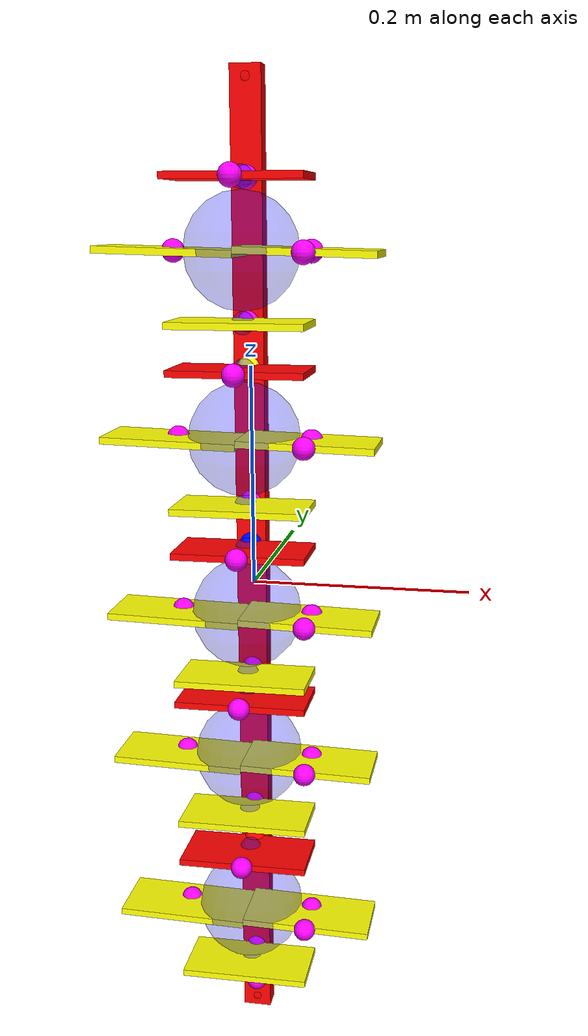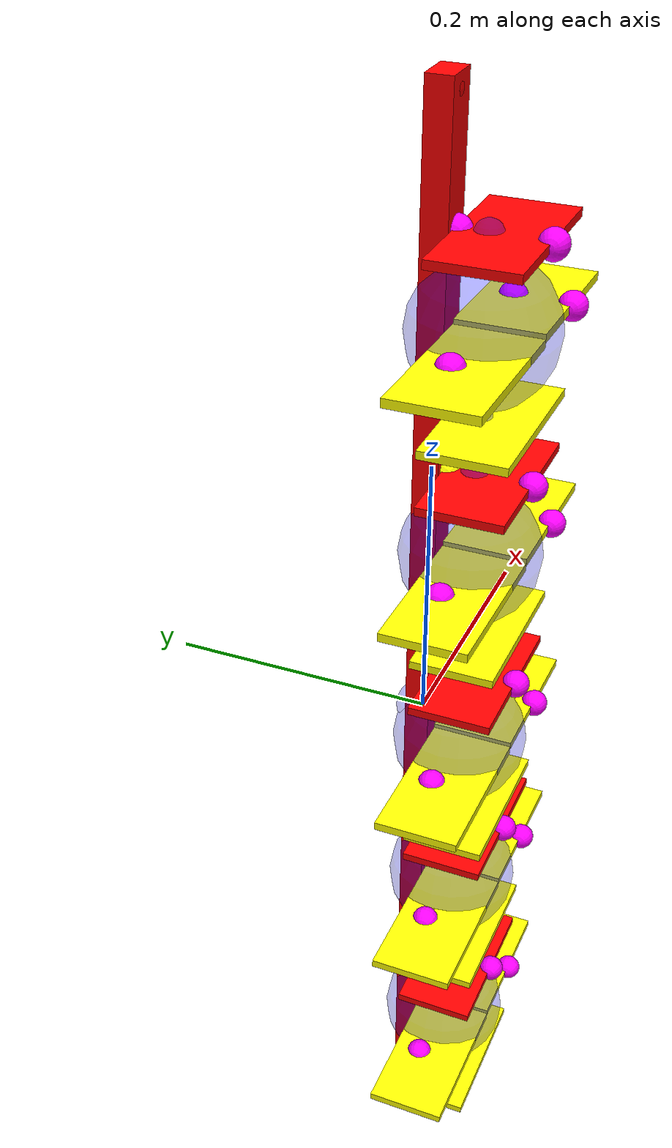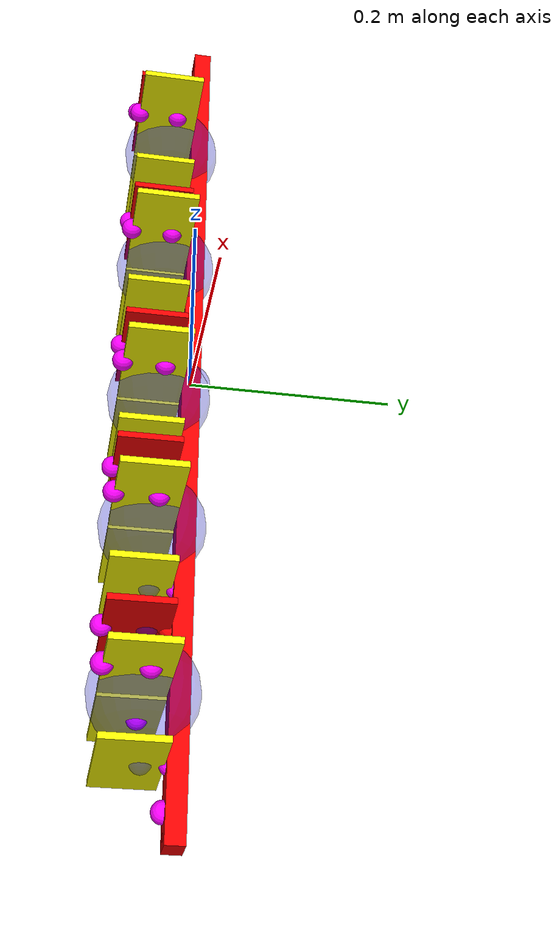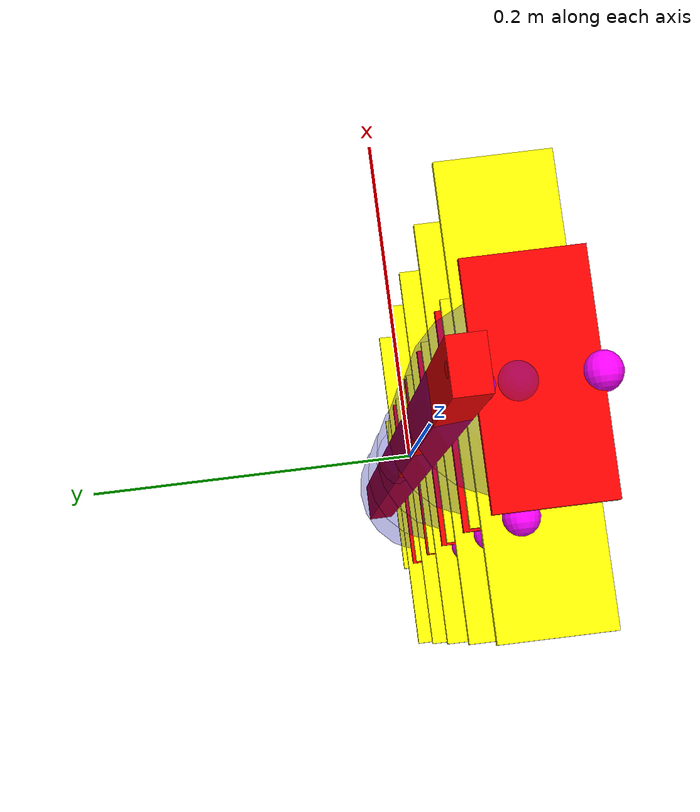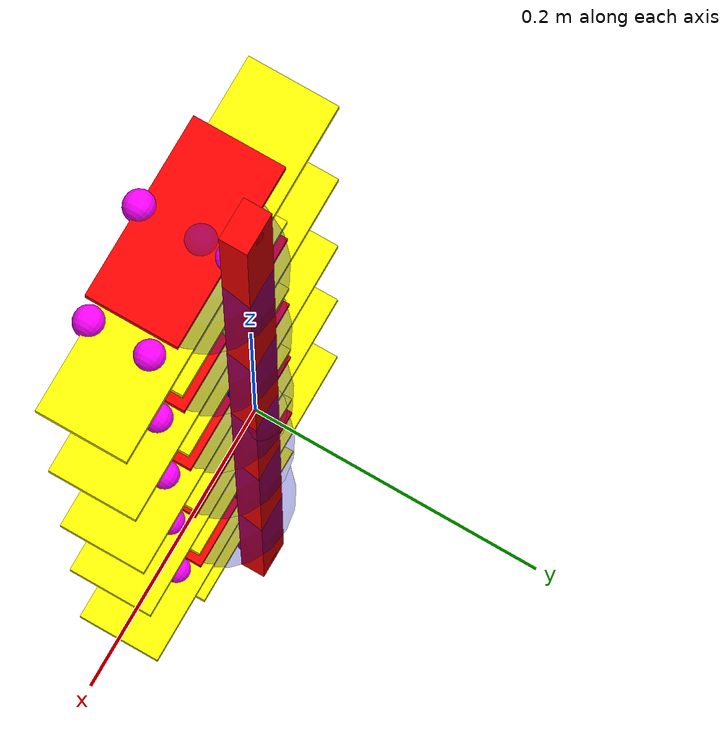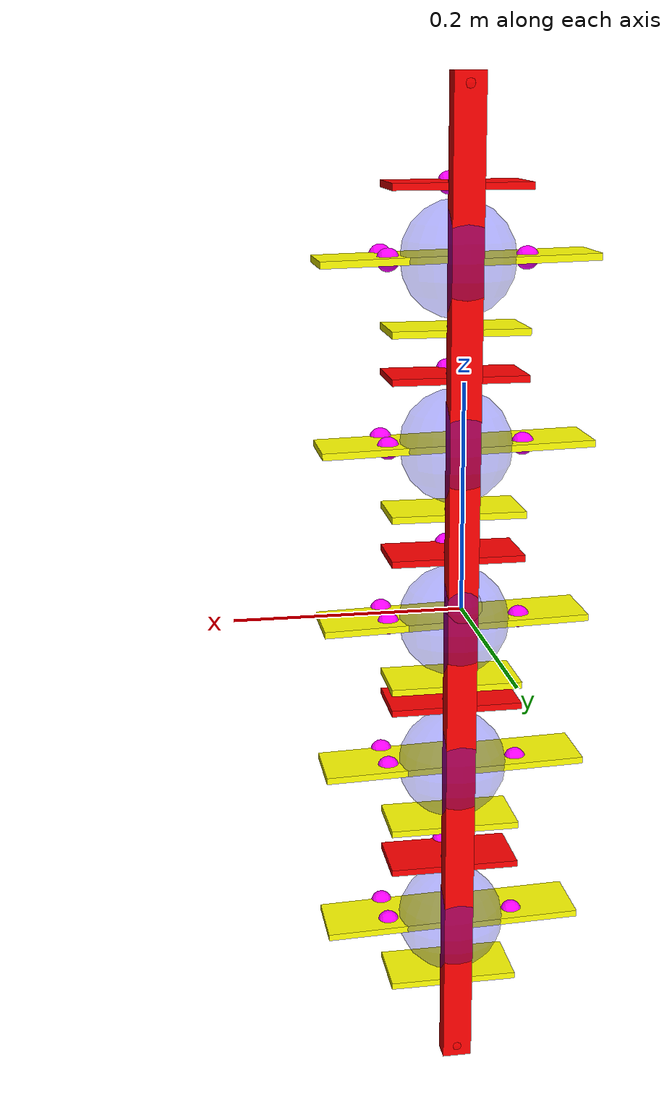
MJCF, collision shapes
<mujoco model="shelf_ivar_0678">
    <asset>
        <mesh file="shelf_ivar_0678/box.stl" name="box_mesh" scale="0.0005 0.0005 0.0005" />
        <mesh file="shelf_ivar_0678/column.stl" name="column_mesh" scale="0.0005 0.0005 0.0005" />
        <texture file="../textures/light-wood.png" name="tex-light-wood" type="2d" />
        <material name="light-wood" reflectance="0.5" texrepeat="20 20" texture="tex-light-wood" texuniform="true" />
    </asset>
    <equality>
        <weld active="false" body1="1_column" body2="2_box1" solimp="1 1 0.5" solref="0.01 0.3" />
        <weld active="false" body1="1_column" body2="3_box2" solimp="1 1 0.5" solref="0.01 0.3" />
        <weld active="false" body1="1_column" body2="4_box3" solimp="1 1 0.5" solref="0.01 0.3" />
        <weld active="false" body1="1_column" body2="5_box4" solimp="1 1 0.5" solref="0.01 0.3" />
        <weld active="false" body1="1_column" body2="6_box5" solimp="1 1 0.5" solref="0.01 0.3" />
    </equality>
    <worldbody>
        <body name="0_part0" pos="0 0 0" quat="1 0 0 0">
            <geom density="1"  mesh="column_mesh" name="1_column_mesh" pos="0 0 0" rgba="0.82 0.71 0.55 1" type="mesh" contype="0" conaffinity="0" />
            <geom density="100"  name="noviz_collision_1_column" pos="0 0 0" solref="0.001 1" type="box" size="0.0135 0.009 0.45" rgba="1 0 0 1" />
            <site name="1_column_bottom_site" pos="0 0 -0.44" rgba="1 0 0 0.3" size="0.01" />
            <site name="1_column_top_site" pos="0.0 0.0 0.44" rgba="1 0 0 0.3" size="0.01" />
            <site name="1_column_horizontal_radius_site" pos="0 0 0" rgba="0 0 1 0.3" size="0.02" />
            <site name="col-box,0,conn_site11" pos="0 -0.01 -0.26" quat="0.707 0 0.707 0" rgba="1 0 0 1" size="0.01" />
            <site name="col-box,0,conn_site12" pos="0 -0.01 -0.10" quat="0.707 0 0.707 0" rgba="0 1 0 1" size="0.01" />
            <site name="col-box,0,conn_site13" pos="0 -0.01 0.04" quat="0.707 0 0.707 0" rgba="0 0 1 1" size="0.01" />
            <site name="col-box,0,conn_site14" pos="0 -0.01 0.20" quat="0.707 0 0.707 0" rgba="1 1 0 1" size="0.01" />
            <site name="col-box,0,conn_site15" pos="0 -0.01 0.36" quat="0.707 0 0.707 0" rgba="1 0 1 1" size="0.01" />
            <site name="col-box,0,conn_site_fake16" pos="0 -0.01 -0.42" quat="0.707 0 0.707 0" rgba="1 0 1 1" size="0.01" />

        </body>

        <body name="1_part1" pos="0 -0.03 -0.32" quat="1 0 0 0">
            <geom density="1" material="light-wood" mesh="box_mesh" name="2_box1_mesh" pos="0 0 0" rgba="0.82 0.71 0.55 1" type="mesh" contype="0" conaffinity="0" />
            <geom density="100"  name="noviz_collision_2_box1_top" pos="0 -0.01 0.06" solref="0.001 1" type="box" size="0.06 0.03 0.003" rgba="1 0 0 1" />
            <geom density="100"  name="noviz_collision_2_box1_bot" pos="0 -0.01 -0.06" solref="0.001 1" type="box" size="0.06 0.03 0.003" rgba="1 1 0 1" />
            <geom density="100"  name="noviz_collision_2_box1_side1" pos="-0.06 -0.01 0" euler="0 1.56  0" solref="0.001 1" type="box" size="0.06 0.03 0.003" rgba="1 1 0 1" />
            <geom density="100"  name="noviz_collision_2_box1_side2" pos="0.06 -0.01 0" euler="0 1.56  0" solref="0.001 1" type="box" size="0.06 0.03 0.003" rgba="1 1 0 1" />
            <site name="box-col,0,conn_site21" pos="0.0 0.025 0.06" quat="0.707 0 0.707 0" rgba="1 0 1 1" size="0.01" />
            <site name="box-col,0,conn_site_fake22" pos="0.0 0.025 -0.06" quat="0.707 0 0.707 0" rgba="1 0 1 1" size="0.01" />
            <site name="box-col,0,conn_site_fake23" pos="-0.06 0.0 0" quat="0.707 0 0.707 0" rgba="1 0 1 1" size="0.01" />
            <site name="box-col,0,conn_site_fake24" pos="0.06 0.0 0" quat="0.707 0 0.707 0" rgba="1 0 1 1" size="0.01" />
            <site name="box-col,0,conn_site_fake25" pos="0 -0.040 0.06" quat="0.707 0 0.707 0" rgba="1 0 1 1" size="0.01" />
            <site name="box-col,0,conn_site_fake26" pos="0.06 -0.040 0" quat="0.707 0 0.707 0" rgba="1 0 1 1" size="0.01" />
            <site name="2_box1_bottom_site" pos="0 0 -0.06" rgba="0 0 1 0.3" size="0.01" />
            <site name="2_box1_top_site" pos="0.0 0.0 0.06" rgba="0 0 1 0.3" size="0.01" />
            <site name="2_box1_horizontal_radius_site" pos="0 0 0" rgba="0 0 1 0.3" size="0.05" />
        </body>

        <body name="2_part2" pos="0 -0.03 -0.16" quat="1 0 0 0">
            <geom density="1" material="light-wood" mesh="box_mesh" name="3_box2_mesh" pos="0 0 0" rgba="0.82 0.71 0.55 1" type="mesh" contype="0" conaffinity="0" />
            <geom density="100"  name="noviz_collision_3_box2_top" pos="0 -0.01 0.06" solref="0.001 1" type="box" size="0.06 0.03 0.003" rgba="1 0 0 1" />
            <geom density="100"  name="noviz_collision_3_box2_bot" pos="0 -0.01 -0.06" solref="0.001 1" type="box" size="0.06 0.03 0.003" rgba="1 1 0 1" />
            <geom density="100"  name="noviz_collision_3_box2_side1" pos="-0.06 -0.01 0" euler="0 1.56  0" solref="0.001 1" type="box" size="0.06 0.03 0.003" rgba="1 1 0 1" />
            <geom density="100"  name="noviz_collision_3_box2_side2" pos="0.06 -0.01 0" euler="0 1.56  0" solref="0.001 1" type="box" size="0.06 0.03 0.003" rgba="1 1 0 1" />
            <site name="box-col,0,conn_site31" pos="0.0 0.025 0.06" quat="0.707 0 0.707 0" rgba="1 0 1 1" size="0.01" />
            <site name="box-col,0,conn_site_fake32" pos="0.0 0.025 -0.06" quat="0.707 0 0.707 0" rgba="1 0 1 1" size="0.01" />
            <site name="box-col,0,conn_site_fake33" pos="-0.06 0.0 0" quat="0.707 0 0.707 0" rgba="1 0 1 1" size="0.01" />
            <site name="box-col,0,conn_site_fake34" pos="0.06 0.0 0" quat="0.707 0 0.707 0" rgba="1 0 1 1" size="0.01" />
            <site name="box-col,0,conn_site_fake35" pos="0 -0.040 0.06" quat="0.707 0 0.707 0" rgba="1 0 1 1" size="0.01" />
            <site name="box-col,0,conn_site_fake36" pos="0.06 -0.040 0" quat="0.707 0 0.707 0" rgba="1 0 1 1" size="0.01" />
            <site name="3_box2_bottom_site" pos="0 0 -0.06" rgba="0 0 1 0.3" size="0.01" />
            <site name="3_box2_top_site" pos="0.0 0.0 0.06" rgba="0 0 1 0.3" size="0.01" />
            <site name="3_box2_horizontal_radius_site" pos="0 0 0" rgba="0 0 1 0.3" size="0.05" />
        </body>

        <body name="3_part3" pos="0 -0.03 -0.02" quat="1 0 0 0">
            <geom density="1" material="light-wood" mesh="box_mesh" name="4_box3_mesh" pos="0 0 0" rgba="0.82 0.71 0.55 1" type="mesh" contype="0" conaffinity="0" />
            <geom density="100"  name="noviz_collision_4_box3_top" pos="0 -0.01 0.06" solref="0.001 1" type="box" size="0.06 0.03 0.003" rgba="1 0 0 1" />
            <geom density="100"  name="noviz_collision_4_box3_bot" pos="0 -0.01 -0.06" solref="0.001 1" type="box" size="0.06 0.03 0.003" rgba="1 1 0 1" />
            <geom density="100"  name="noviz_collision_4_box3_side1" pos="-0.06 -0.01 0" euler="0 1.56  0" solref="0.001 1" type="box" size="0.06 0.03 0.003" rgba="1 1 0 1" />
            <geom density="100"  name="noviz_collision_4_box3_side2" pos="0.06 -0.01 0" euler="0 1.56  0" solref="0.001 1" type="box" size="0.06 0.03 0.003" rgba="1 1 0 1" />
            <site name="box-col,0,conn_site41" pos="0.0 0.025 0.06" quat="0.707 0 0.707 0" rgba="1 0 1 1" size="0.01" />
            <site name="box-col,0,conn_site_fake42" pos="0.0 0.025 -0.06" quat="0.707 0 0.707 0" rgba="1 0 1 1" size="0.01" />
            <site name="box-col,0,conn_site_fake43" pos="-0.06 0.0 0" quat="0.707 0 0.707 0" rgba="1 0 1 1" size="0.01" />
            <site name="box-col,0,conn_site_fake44" pos="0.06 0.0 0" quat="0.707 0 0.707 0" rgba="1 0 1 1" size="0.01" />
            <site name="box-col,0,conn_site_fake45" pos="0 -0.040 0.06" quat="0.707 0 0.707 0" rgba="1 0 1 1" size="0.01" />
            <site name="box-col,0,conn_site_fake46" pos="0.06 -0.040 0" quat="0.707 0 0.707 0" rgba="1 0 1 1" size="0.01" />
            <site name="4_box3_bottom_site" pos="0 0 -0.06" rgba="0 0 1 0.3" size="0.01" />
            <site name="4_box3_top_site" pos="0.0 0.0 0.06" rgba="0 0 1 0.3" size="0.01" />
            <site name="4_box3_horizontal_radius_site" pos="0 0 0" rgba="0 0 1 0.3" size="0.05" />
        </body>

        <body name="4_part4" pos="0 -0.03 0.14" quat="1 0 0 0">
            <geom density="1" material="light-wood" mesh="box_mesh" name="5_box4_mesh" pos="0 0 0" rgba="0.82 0.71 0.55 1" type="mesh" contype="0" conaffinity="0" />
            <geom density="100"  name="noviz_collision_5_box4_top" pos="0 -0.01 0.06" solref="0.001 1" type="box" size="0.06 0.03 0.003" rgba="1 0 0 1" />
            <geom density="100"  name="noviz_collision_5_box4_bot" pos="0 -0.01 -0.06" solref="0.001 1" type="box" size="0.06 0.03 0.003" rgba="1 1 0 1" />
            <geom density="100"  name="noviz_collision_5_box4_side1" pos="-0.06 -0.01 0" euler="0 1.56  0" solref="0.001 1" type="box" size="0.06 0.03 0.003" rgba="1 1 0 1" />
            <geom density="100"  name="noviz_collision_5_box4_side2" pos="0.06 -0.01 0" euler="0 1.56  0" solref="0.001 1" type="box" size="0.06 0.03 0.003" rgba="1 1 0 1" />
            <site name="box-col,0,conn_site51" pos="0.0 0.025 0.06" quat="0.707 0 0.707 0" rgba="1 0 1 1" size="0.01" />
            <site name="box-col,0,conn_site_fake52" pos="0.0 0.025 -0.06" quat="0.707 0 0.707 0" rgba="1 0 1 1" size="0.01" />
            <site name="box-col,0,conn_site_fake53" pos="-0.06 0.0 0" quat="0.707 0 0.707 0" rgba="1 0 1 1" size="0.01" />
            <site name="box-col,0,conn_site_fake54" pos="0.06 0.0 0" quat="0.707 0 0.707 0" rgba="1 0 1 1" size="0.01" />
            <site name="box-col,0,conn_site_fake55" pos="0 -0.040 0.06" quat="0.707 0 0.707 0" rgba="1 0 1 1" size="0.01" />
            <site name="box-col,0,conn_site_fake56" pos="0.06 -0.040 0" quat="0.707 0 0.707 0" rgba="1 0 1 1" size="0.01" />
            <site name="5_box4_bottom_site" pos="0 0 -0.06" rgba="0 0 1 0.3" size="0.01" />
            <site name="5_box4_top_site" pos="0.0 0.0 0.06" rgba="0 0 1 0.3" size="0.01" />
            <site name="5_box4_horizontal_radius_site" pos="0 0 0" rgba="0 0 1 0.3" size="0.05" />
        </body>

        <body name="5_part5" pos="0 -0.03 0.30" quat="1 0 0 0">
            <geom density="1" material="light-wood" mesh="box_mesh" name="6_box5_mesh" pos="0 0 0" rgba="0.82 0.71 0.55 1" type="mesh" contype="0" conaffinity="0" />
            <geom density="100"  name="noviz_collision_6_box5_top" pos="0 -0.01 0.06" solref="0.001 1" type="box" size="0.06 0.03 0.003" rgba="1 0 0 1" />
            <geom density="100"  name="noviz_collision_6_box5_bot" pos="0 -0.01 -0.06" solref="0.001 1" type="box" size="0.06 0.03 0.003" rgba="1 1 0 1" />
            <geom density="100"  name="noviz_collision_6_box5_side1" pos="-0.06 -0.01 0" euler="0 1.56  0" solref="0.001 1" type="box" size="0.06 0.03 0.003" rgba="1 1 0 1" />
            <geom density="100"  name="noviz_collision_6_box5_side2" pos="0.06 -0.01 0" euler="0 1.56  0" solref="0.001 1" type="box" size="0.06 0.03 0.003" rgba="1 1 0 1" />
            <site name="box-col,0,conn_site61" pos="0.0 0.025 0.06" quat="0.707 0 0.707 0" rgba="1 0 1 1" size="0.01" />
            <site name="box-col,0,conn_site_fake62" pos="0.0 0.025 -0.06" quat="0.707 0 0.707 0" rgba="1 0 1 1" size="0.01" />
            <site name="box-col,0,conn_site_fake63" pos="-0.06 0.0 0" quat="0.707 0 0.707 0" rgba="1 0 1 1" size="0.01" />
            <site name="box-col,0,conn_site_fake64" pos="0.06 0.0 0" quat="0.707 0 0.707 0" rgba="1 0 1 1" size="0.01" />
            <site name="box-col,0,conn_site_fake65" pos="0 -0.040 0.06" quat="0.707 0 0.707 0" rgba="1 0 1 1" size="0.01" />
            <site name="box-col,0,conn_site_fake66" pos="0.06 -0.040 0" quat="0.707 0 0.707 0" rgba="1 0 1 1" size="0.01" />
            <site name="6_box5_bottom_site" pos="0 0 -0.06" rgba="0 0 1 0.3" size="0.01" />
            <site name="6_box5_top_site" pos="0.0 0.0 0.06" rgba="0 0 1 0.3" size="0.01" />
            <site name="6_box5_horizontal_radius_site" pos="0 0 0" rgba="0 0 1 0.3" size="0.05" />
        </body>
    </worldbody>
</mujoco>
